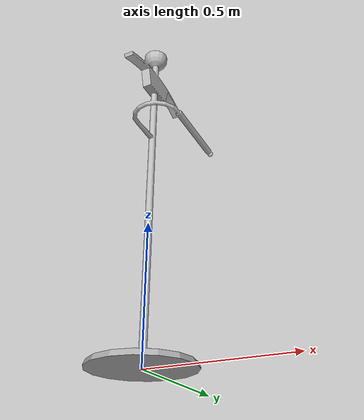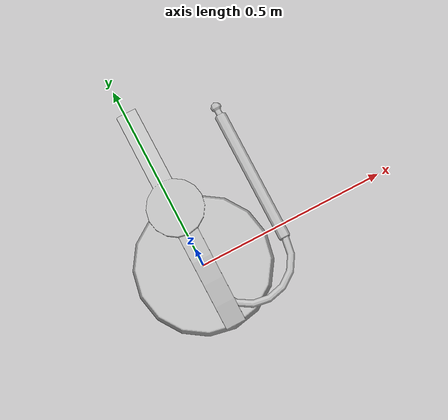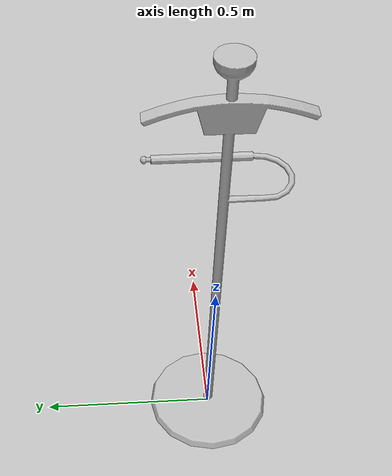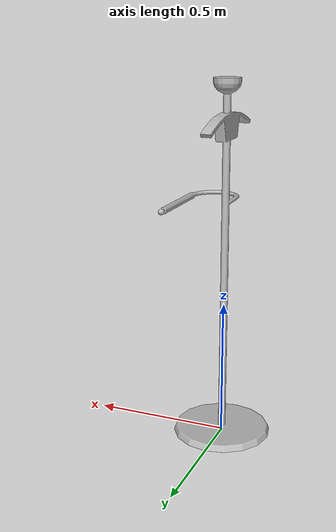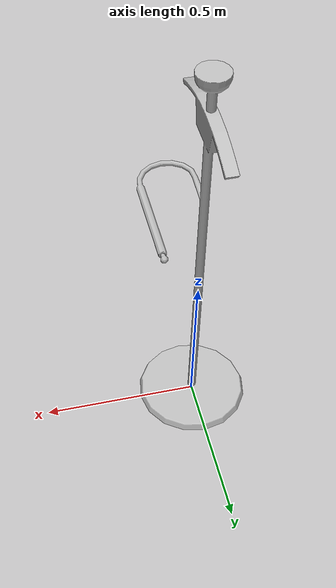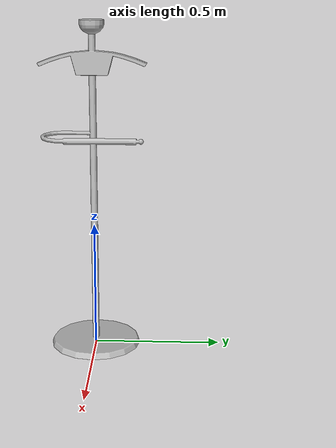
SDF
<?xml version='1.0'?>
<sdf version='1.4'>
  <model name='100'>
    <pose>0 0 0 0 0 0</pose>
    <static>true</static>
    <link name='link'>
      <collision name='collision'>
        <pose>0 0 0 0 0 0</pose>
        <geometry>
          <box>
            <size>0.359516 0.414814 2</size>
          </box>
        </geometry>
      </collision>
      <visual name='visual'>
        <pose>0 0 0 0 0 0</pose>
        <geometry>
          <mesh><uri>model://100/100.dae</uri></mesh>
        </geometry>
      </visual>
    </link>
  </model>
</sdf>
